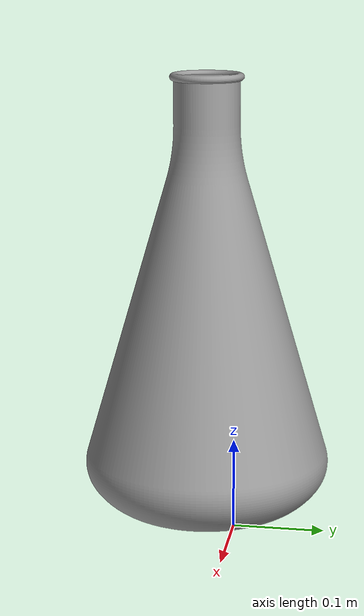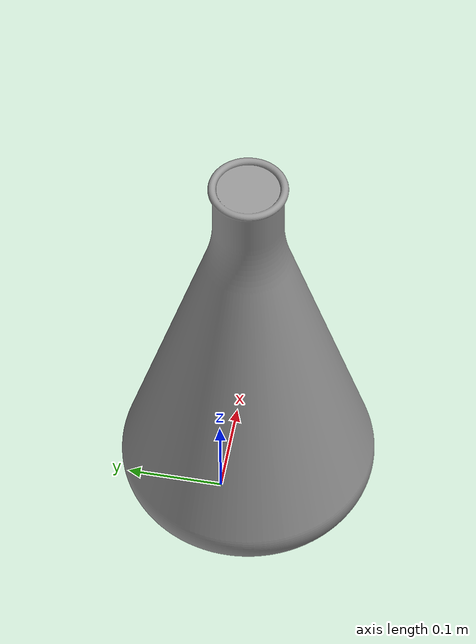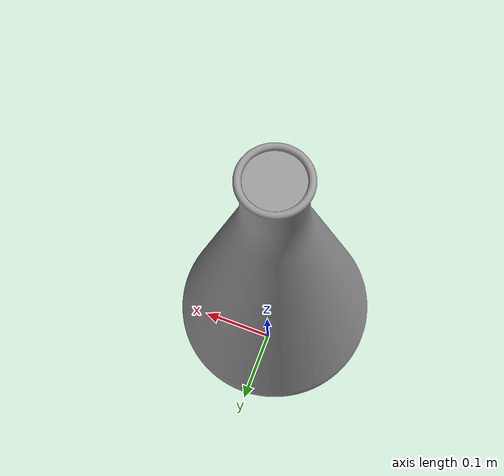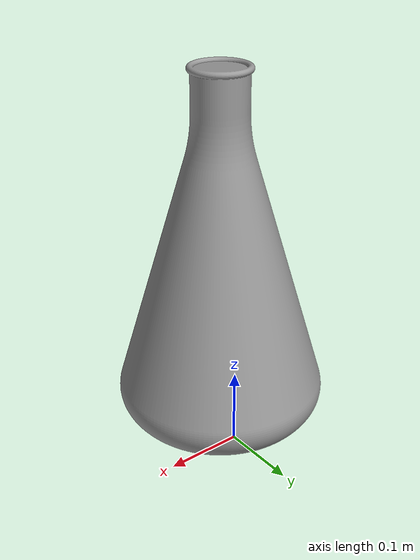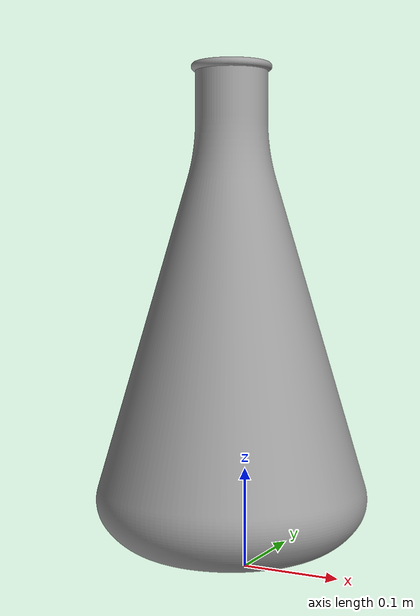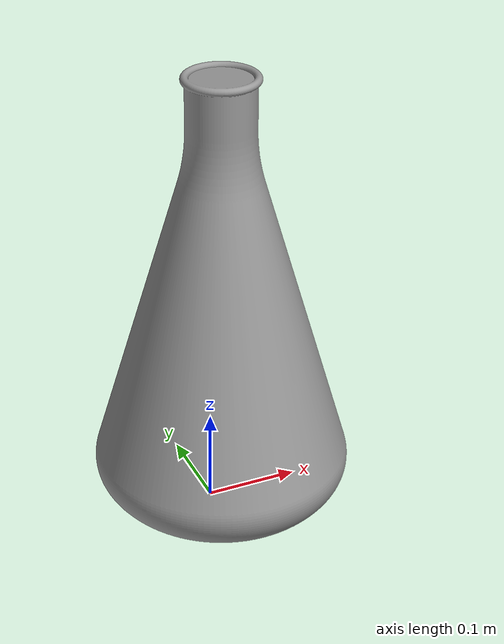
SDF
<?xml version='1.0'?>
<sdf version='1.7'>
  <model name='conical_flask_model'>
    <pose>0 0.2 0.75 0 0 0</pose> <!-- Rotated 90 degrees -->
    <!-- Beaker Definition -->
    <link name='link_2'>
      <inertial>
        <inertia>
          <ixx>2113452.814813</ixx>
          <ixy>-0.408193</ixy>
          <ixz>-0.174324</ixz>
          <iyx>-0.408193</iyx>
          <iyy>663146.886889</iyy>
          <iyz>29099.165317</iyz>
          <izx>-0.174324</izx>
          <izy>29099.165317</izy>
          <izz>2099031.22</izz>
        </inertia>
      </inertial>
      <visual name='visual'>
        <geometry>
          <mesh>
            <uri>model://conical_flask/meshes/ErlenmeyerSolid.stl</uri>
            <scale>0.01 0.01 0.01</scale> <!-- Converted to millimetres -->
          </mesh>
        </geometry>
        <material>
          <lighting>1</lighting>
          <script>
            <uri>file://media/materials/scripts/gazebo.material</uri>
            <name>Gazebo/Grey</name>
          </script>
        </material>
        <transparency>0</transparency>
        <cast_shadows>1</cast_shadows>
      </visual>
      <collision name='collision'>
        <geometry>
          <mesh>
            <uri>model://conical_flask/meshes/ErlenmeyerSolid.stl</uri>
            <scale>0.01 0.01 0.01</scale> <!-- Converted to millimetres -->
          </mesh>
        </geometry>
      </collision>
    </link>
  </model>
</sdf>
